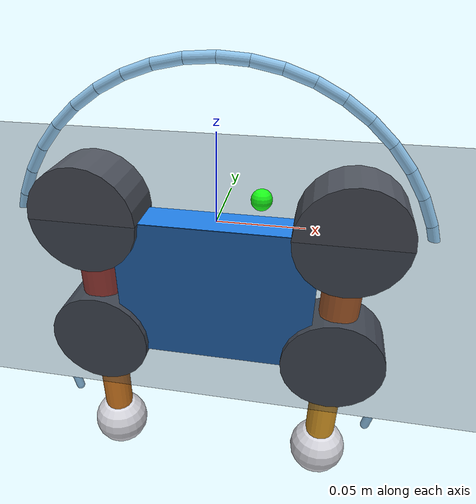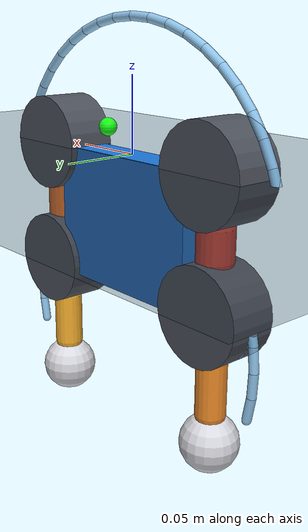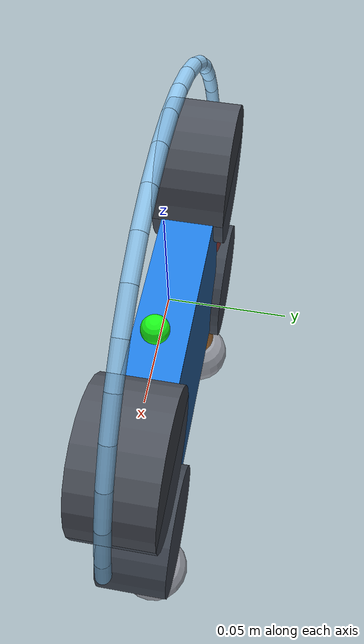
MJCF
<mujoco model="curl_robot_2d">

          <!-- 使用弧度和 SI 单位，重力沿 -z。 -->
          <compiler angle="radian" autolimits="true"/>
          <option timestep="0.001" gravity="0 0 -9.81"
                  integrator="implicitfast" cone="elliptic"
                  iterations="20" ls_iterations="10"/>

          <!-- 以下设置只影响渲染，不影响动力学。 -->
          <visual>
            <global azimuth="90" elevation="0" offwidth="960" offheight="720"/>
            <rgba com="0.1 1 0.1 1" contactpoint="1 0.2 0.1 1"
                  contactforce="1 0.7 0.1 1"/>
          </visual>

          <!-- 程序生成的天空和地面纹理；项目不依赖外部 mesh。 -->
          <asset>
            <texture type="skybox" builtin="gradient" rgb1=".18 .23 .30"
                     rgb2=".02 .03 .05" width="512" height="512"/>
            <texture name="grid" type="2d" builtin="checker" width="512"
                     height="512" rgb1=".18 .22 .27" rgb2=".10 .13 .17"/>
            <material name="ground" texture="grid" texrepeat="1 1"
                      texuniform="true" reflectance="0.05"/>
          </asset>

          <default>
            <!--
              bit 1 = 地面，bit 2 = 结构代理，bit 4 = 弧壳。
              结构和弧壳都与地面以及非相邻机器人刚体碰撞；MuJoCo 默认
              过滤同一 body 和父子 body，避免关节两侧的预期邻接误碰。
            -->
            <joint limited="true"/>
            <geom contype="0" conaffinity="1" condim="3"
                  friction="0.8 0.02 0.01"
                  solref="0.01 1" solimp="0.9 0.95 0.001"/>
            <default class="hip_joint">
              <!--
                左右两个同步髋电机合并为一个二维自由度。弧壳端部已经缩短，
                collision-compatible range 恢复为源模型建议安全范围。
              -->
              <joint damping="0.02"
                     armature="0.0032"
                     range="-1.12 2.41"/>
            </default>
            <default class="knee_joint">
              <!-- 等效膝关节正角度表示向内蜷缩。 -->
              <joint damping="0.02"
                     armature="0.0032"
                     range="-0.61 2.69"/>
            </default>
            <default class="paired_servo">
              <!--
                左右电机对的等效伺服：最大力矩 +/-6 N m，
                PD 增益取两个源电机之和。
              -->
              <general forcelimited="true" forcerange="-6 6"
                       ctrllimited="true"
                       gainprm="10 0 0"
                       biastype="affine"
                       biasprm="0 -10 -0.2"/>
            </default>
            <default class="rolling_shell">
              <!--
                第一版弧壳由短 capsule 拼接。body 已显式给出 inertial，
                因而这些 geom 目前只改变外形和接触，不增加质量或惯量。
              -->
              <geom type="capsule" size="0.003"
                    contype="4" conaffinity="3"
                    solref="0.003 1" solimp="0.95 0.99 0.001"
                    group="1" rgba="0.55 0.78 0.95 0.88"/>
            </default>
            <default class="structure_collision">
              <!-- 有限厚度结构代理；参与地面与选择性机器人自碰撞。 -->
              <geom contype="2" conaffinity="7"
                    solref="0.003 1" solimp="0.95 0.99 0.001"/>
            </default>
          </default>

          <worldbody>
            <!-- 固定侧视相机沿 +y 观察 x-z 平面。 -->
            <light name="key" pos="-0.4 -1.0 1.2" dir="0.2 0.8 -1"
                   diffuse="0.9 0.9 0.9"/>
            <camera name="side" pos="0 -0.75 0.18"
                    xyaxes="1 0 0 0 0 1"/>

            <!-- 地面是当前唯一 contype=1 的碰撞物体。 -->
            <geom name="floor" type="plane" size="2 2 0.05"
                  contype="1" conaffinity="1" material="ground"/>

            <!--
              Torso 是五连杆树的根。简化 capsule 的中心线正好连接前后髋
              锚点，因此 Torso 边与四条腿边等长。
            -->
            <body name="torso" pos="0 0 0">
              <!-- 平面复合根：x slide + z slide + 绕 y 的 hinge。 -->
              <joint name="root_x" type="slide" axis="1 0 0" limited="false"
                     damping="0.01"/>
              <joint name="root_z" type="slide" axis="0 0 1" limited="false"
                     damping="0.01"/>
              <joint name="root_pitch" type="hinge" axis="0 1 0" limited="false"
                     damping="0.01"/>
              <inertial pos="0.025 0 0.015"
                        mass="1.506"
                        diaginertia="0.0085 0.0085 0.0024"/>
              <geom name="torso_proxy" type="box" class="structure_collision"
                    pos="0 0 -0.04507"
                    size="0.06 0.012 0.04507"
                    rgba="0.12 0.48 0.88 1"/>
<geom name="torso_shell_02" class="rolling_shell" fromto="0.1202577654 0 -0.007294097808 0.1150230018 0 0.008127018407"/>
<geom name="torso_shell_03" class="rolling_shell" fromto="0.1150230018 0 0.008127018407 0.1078201628 0 0.02273293108"/>
<geom name="torso_shell_04" class="rolling_shell" fromto="0.1078201628 0 0.02273293108 0.09877249087 0 0.03627372899"/>
<geom name="torso_shell_05" class="rolling_shell" fromto="0.09877249087 0 0.03627372899 0.08803479426 0 0.04851772533"/>
<geom name="torso_shell_06" class="rolling_shell" fromto="0.08803479426 0 0.04851772533 0.07579079791 0 0.05925542194"/>
<geom name="torso_shell_07" class="rolling_shell" fromto="0.07579079791 0 0.05925542194 0.06225 0 0.06830309385"/>
<geom name="torso_shell_08" class="rolling_shell" fromto="0.06225 0 0.06830309385 0.04764408733 0 0.07550593287"/>
<geom name="torso_shell_09" class="rolling_shell" fromto="0.04764408733 0 0.07550593287 0.03222297112 0 0.08074069645"/>
<geom name="torso_shell_10" class="rolling_shell" fromto="0.03222297112 0 0.08074069645 0.01625051093 0 0.08391781632"/>
<geom name="torso_shell_11" class="rolling_shell" fromto="0.01625051093 0 0.08391781632 7.623426325e-18 0 0.08498293108"/>
<geom name="torso_shell_12" class="rolling_shell" fromto="7.623426325e-18 0 0.08498293108 -0.01625051093 0 0.08391781632"/>
<geom name="torso_shell_13" class="rolling_shell" fromto="-0.01625051093 0 0.08391781632 -0.03222297112 0 0.08074069645"/>
<geom name="torso_shell_14" class="rolling_shell" fromto="-0.03222297112 0 0.08074069645 -0.04764408733 0 0.07550593287"/>
<geom name="torso_shell_15" class="rolling_shell" fromto="-0.04764408733 0 0.07550593287 -0.06225 0 0.06830309385"/>
<geom name="torso_shell_16" class="rolling_shell" fromto="-0.06225 0 0.06830309385 -0.07579079791 0 0.05925542194"/>
<geom name="torso_shell_17" class="rolling_shell" fromto="-0.07579079791 0 0.05925542194 -0.08803479426 0 0.04851772533"/>
<geom name="torso_shell_18" class="rolling_shell" fromto="-0.08803479426 0 0.04851772533 -0.09877249087 0 0.03627372899"/>
<geom name="torso_shell_19" class="rolling_shell" fromto="-0.09877249087 0 0.03627372899 -0.1078201628 0 0.02273293108"/>
<geom name="torso_shell_20" class="rolling_shell" fromto="-0.1078201628 0 0.02273293108 -0.1150230018 0 0.008127018407"/>
<geom name="torso_shell_21" class="rolling_shell" fromto="-0.1150230018 0 0.008127018407 -0.1202577654 0 -0.007294097808"/>
              <site name="torso_com" type="sphere"
                    pos="0.025 0 0.015"
                    size="0.006" rgba="0.1 1 0.1 1"/>

              <!--
                前腿链：髋关节正转使膝向外（+x），膝关节正转使足端向内。
              -->
              <body name="front_thigh" pos="0.0752 0 0">
                <joint name="front_hip" type="hinge" axis="0 -1 0"
                       class="hip_joint"/>
                <inertial pos="0 0 -0.0573059111"
                          mass="0.732"
                          diaginertia="0.002673 0.002673 0.0002"/>
                <geom name="front_thigh_proxy" type="capsule" class="structure_collision"
                      fromto="0 0 -0.032 0 0 -0.0524547808"
                      size="0.012"
                      rgba="0.95 0.45 0.12 1"/>
                <geom name="front_hip_motor" type="cylinder" class="structure_collision"
                      size="0.032 0.0165"
                      euler="1.570796327 0 0" rgba="0.30 0.32 0.36 1"/>
<geom name="front_thigh_shell_00" class="rolling_shell" fromto="0.04462688643 0 -0.04472728188 0.04536563822 0 -0.02845866728"/>
<geom name="front_thigh_shell_01" class="rolling_shell" fromto="0.04536563822 0 -0.02845866728 0.04397458958 0 -0.01223280648"/>
<geom name="front_thigh_shell_44" class="rolling_shell" fromto="0.02116443565 0 -0.1047505513 0.02993852077 0 -0.09103089369"/>
<geom name="front_thigh_shell_45" class="rolling_shell" fromto="0.02993852077 0 -0.09103089369 0.03684676771 0 -0.07628336171"/>
<geom name="front_thigh_shell_46" class="rolling_shell" fromto="0.03684676771 0 -0.07628336171 0.04177097444 0 -0.06076028976"/>
<geom name="front_thigh_shell_47" class="rolling_shell" fromto="0.04177097444 0 -0.06076028976 0.04462688643 0 -0.04472728188"/>
                <site name="front_hip_site" type="sphere" size="0.006"
                      rgba="1 0.85 0.1 1"/>
                <site name="front_thigh_com" type="sphere"
                      pos="0 0 -0.0573059111"
                      size="0.005" rgba="0.1 1 0.1 1"/>

                <body name="front_shank" pos="0 0 -0.0844547808">
                  <joint name="front_knee" type="hinge" axis="0 1 0"
                         class="knee_joint"/>
                  <inertial pos="0 0 -0.0897967059"
                            mass="0.1"
                            diaginertia="0.000155075 0.000155075 2e-05"/>
                  <geom name="front_shank_proxy" type="capsule" class="structure_collision"
                        fromto="0 0 -0.032 0 0 -0.0685136895"
                        size="0.01"
                        rgba="0.98 0.70 0.18 1"/>
                  <geom name="front_knee_motor" type="cylinder" class="structure_collision"
                        size="0.032 0.0165"
                        euler="1.570796327 0 0" rgba="0.30 0.32 0.36 1"/>
<geom name="front_shank_shell_40" class="rolling_shell" fromto="0.02985616447 0 -0.06020902005 0.03282486366 0 -0.04419651243"/>
<geom name="front_shank_shell_41" class="rolling_shell" fromto="0.03282486366 0 -0.04419651243 0.03367811357 0 -0.02793350104"/>
<geom name="front_shank_shell_42" class="rolling_shell" fromto="0.03367811357 0 -0.02793350104 0.03240131485 0 -0.0116982505"/>
<geom name="front_shank_shell_43" class="rolling_shell" fromto="0.03240131485 0 -0.0116982505 0.02901631389 0 0.004231449545"/>
                  <geom name="front_foot_proxy" type="sphere" class="structure_collision"
                        pos="0 0 -0.0880136895"
                        size="0.0195"
                        rgba="0.85 0.85 0.88 1"/>
                  <site name="front_knee_site" type="sphere" size="0.006"
                        rgba="1 0.85 0.1 1"/>
                  <site name="front_shank_com" type="sphere"
                        pos="0 0 -0.0897967059"
                        size="0.005" rgba="0.1 1 0.1 1"/>
                  <site name="front_foot_site"
                        pos="0 0 -0.0880136895" size="0.004"/>
                </body>
              </body>

              <!--
                后腿链通过反转两个 hinge 轴镜像前腿，因此前后腿可以共用
                相同的等效关节角约定。
              -->
              <body name="rear_thigh" pos="-0.0752 0 0">
                <joint name="rear_hip" type="hinge" axis="0 1 0"
                       class="hip_joint"/>
                <inertial pos="0 0 -0.0573059111"
                          mass="0.732"
                          diaginertia="0.002673 0.002673 0.0002"/>
                <geom name="rear_thigh_proxy" type="capsule" class="structure_collision"
                      fromto="0 0 -0.032 0 0 -0.0524547808"
                      size="0.012"
                      rgba="0.84 0.24 0.18 1"/>
                <geom name="rear_hip_motor" type="cylinder" class="structure_collision"
                      size="0.032 0.0165"
                      euler="1.570796327 0 0" rgba="0.30 0.32 0.36 1"/>
<geom name="rear_thigh_shell_22" class="rolling_shell" fromto="-0.04397458958 0 -0.01223280648 -0.04536563822 0 -0.02845866728"/>
<geom name="rear_thigh_shell_23" class="rolling_shell" fromto="-0.04536563822 0 -0.02845866728 -0.04462688643 0 -0.04472728188"/>
<geom name="rear_thigh_shell_24" class="rolling_shell" fromto="-0.04462688643 0 -0.04472728188 -0.04177097444 0 -0.06076028976"/>
<geom name="rear_thigh_shell_25" class="rolling_shell" fromto="-0.04177097444 0 -0.06076028976 -0.03684676771 0 -0.07628336171"/>
<geom name="rear_thigh_shell_26" class="rolling_shell" fromto="-0.03684676771 0 -0.07628336171 -0.02993852077 0 -0.09103089369"/>
<geom name="rear_thigh_shell_27" class="rolling_shell" fromto="-0.02993852077 0 -0.09103089369 -0.02116443565 0 -0.1047505513"/>
                <site name="rear_hip_site" type="sphere" size="0.006"
                      rgba="1 0.85 0.1 1"/>
                <site name="rear_thigh_com" type="sphere"
                      pos="0 0 -0.0573059111"
                      size="0.005" rgba="0.1 1 0.1 1"/>

                <body name="rear_shank" pos="0 0 -0.0844547808">
                  <joint name="rear_knee" type="hinge" axis="0 -1 0"
                         class="knee_joint"/>
                  <inertial pos="0 0 -0.0897967059"
                            mass="0.1"
                            diaginertia="0.000155075 0.000155075 2e-05"/>
                  <geom name="rear_shank_proxy" type="capsule" class="structure_collision"
                        fromto="0 0 -0.032 0 0 -0.0685136895"
                        size="0.01"
                        rgba="0.94 0.55 0.16 1"/>
                  <geom name="rear_knee_motor" type="cylinder" class="structure_collision"
                        size="0.032 0.0165"
                        euler="1.570796327 0 0" rgba="0.30 0.32 0.36 1"/>
<geom name="rear_shank_shell_28" class="rolling_shell" fromto="-0.02901631389 0 0.004231449545 -0.03240131485 0 -0.0116982505"/>
<geom name="rear_shank_shell_29" class="rolling_shell" fromto="-0.03240131485 0 -0.0116982505 -0.03367811357 0 -0.02793350104"/>
<geom name="rear_shank_shell_30" class="rolling_shell" fromto="-0.03367811357 0 -0.02793350104 -0.03282486366 0 -0.04419651243"/>
<geom name="rear_shank_shell_31" class="rolling_shell" fromto="-0.03282486366 0 -0.04419651243 -0.02985616447 0 -0.06020902005"/>
                  <geom name="rear_foot_proxy" type="sphere" class="structure_collision"
                        pos="0 0 -0.0880136895"
                        size="0.0195"
                        rgba="0.85 0.85 0.88 1"/>
                  <site name="rear_knee_site" type="sphere" size="0.006"
                        rgba="1 0.85 0.1 1"/>
                  <site name="rear_shank_com" type="sphere"
                        pos="0 0 -0.0897967059"
                        size="0.005" rgba="0.1 1 0.1 1"/>
                  <site name="rear_foot_site"
                        pos="0 0 -0.0880136895" size="0.004"/>
                </body>
              </body>
            </body>
          </worldbody>

          <contact>
            <exclude body1="torso" body2="front_thigh"/>
            <exclude body1="torso" body2="front_shank"/>
            <exclude body1="torso" body2="rear_thigh"/>
            <exclude body1="torso" body2="rear_shank"/>
            <!--
              compact 中允许两个有限尺寸足端表面接触。显式 pair 使用更硬的
              内部接触参数，减少软接触导致的数值穿透；并不把足端焊接。
            -->
            <pair name="front_rear_foot_contact"
                  geom1="front_foot_proxy" geom2="rear_foot_proxy"
                  condim="3" friction="0.8 0.02 0.01"
                  solref="0.002 1" solimp="0.97 0.995 0.001"/>
          </contact>

          <!-- 四个成对位置伺服；ctrl 表示目标关节角。 -->
          <actuator>
            <general name="front_hip_servo" joint="front_hip"
                     class="paired_servo"
                     ctrlrange="-1.12 2.41"/>
            <general name="front_knee_servo" joint="front_knee"
                     class="paired_servo"
                     ctrlrange="-0.61 2.69"/>
            <general name="rear_hip_servo" joint="rear_hip"
                     class="paired_servo"
                     ctrlrange="-1.12 2.41"/>
            <general name="rear_knee_servo" joint="rear_knee"
                     class="paired_servo"
                     ctrlrange="-0.61 2.69"/>
          </actuator>

          <!--
            同一模型中的刚性实验模式。四个约束默认关闭，不影响正常 servo
            仿真；被动刚性基准脚本在运行时通过 data.eq_active 开启它们，
            并同时关闭 actuator。joint2 省略时，polycoef[0] 是相对 qpos0
            的固定目标角。
          -->
          <equality>
            <joint name="lock_front_hip_compact" joint1="front_hip"
                   polycoef="0.1108283051 0 0 0 0"
                   active="false" solref="0.004 1"
                   solimp="0.999 0.9999 0.001"/>
            <joint name="lock_front_knee_compact" joint1="front_knee"
                   polycoef="0.9092586986 0 0 0 0"
                   active="false" solref="0.004 1"
                   solimp="0.999 0.9999 0.001"/>
            <joint name="lock_rear_hip_compact" joint1="rear_hip"
                   polycoef="0.1108283051 0 0 0 0"
                   active="false" solref="0.004 1"
                   solimp="0.999 0.9999 0.001"/>
            <joint name="lock_rear_knee_compact" joint1="rear_knee"
                   polycoef="0.9092586986 0 0 0 0"
                   active="false" solref="0.004 1"
                   solimp="0.999 0.9999 0.001"/>
          </equality>

          <!-- 用于诊断和未来 RL 观测的最小传感器集合。 -->
          <sensor>
            <framepos name="torso_position" objtype="body" objname="torso"/>
            <framelinvel name="torso_velocity" objtype="body" objname="torso"/>
            <frameangvel name="torso_angular_velocity" objtype="body" objname="torso"/>
            <jointpos name="front_hip_position" joint="front_hip"/>
            <jointpos name="front_knee_position" joint="front_knee"/>
            <jointpos name="rear_hip_position" joint="rear_hip"/>
            <jointpos name="rear_knee_position" joint="rear_knee"/>
          </sensor>

          <keyframe>
            <!-- 展开姿态：两条腿竖直，两个足端球与地面相切。 -->
            <key name="open"
                 qpos="0 0.1919684703 0 0 0 0 0"
                 ctrl="0 0 0 0"/>
            <!--
              二维行走检查姿态：前足支撑，后足摆动。它只用于验证展开后的
              外壳间隙与足端工作区，不代表固定的行走控制轨迹。
            -->
            <key name="walk"
                 qpos="0 0.1855794682 0 0.35 0.52 0.35 0.78"
                 ctrl="0.35 0.52 0.35 0.78"/>
            <!--
              等边 compact 姿态：
                hip 固定为 18 度；
                knee 由有限尺寸足端的表面接触条件反算。
              前后足端属于两条开链，只允许接触，不焊接、不中心重合。
            -->
            <key name="compact"
                 qpos="0 0.164855389 0 0.1108283051 0.9092586986 0.1108283051 0.9092586986"
                 ctrl="0.1108283051 0.9092586986 0.1108283051 0.9092586986"/>
          </keyframe>
        </mujoco>
